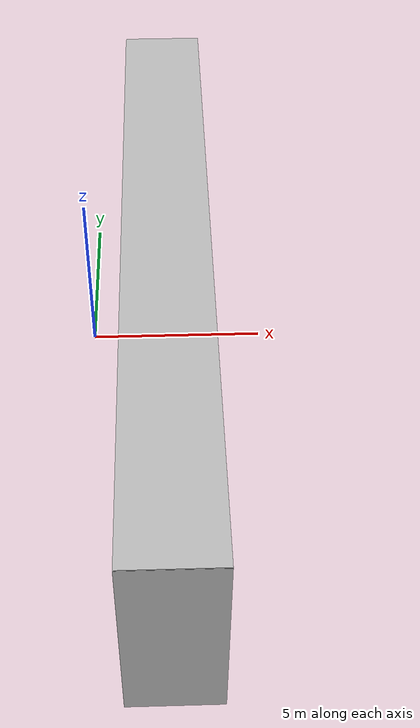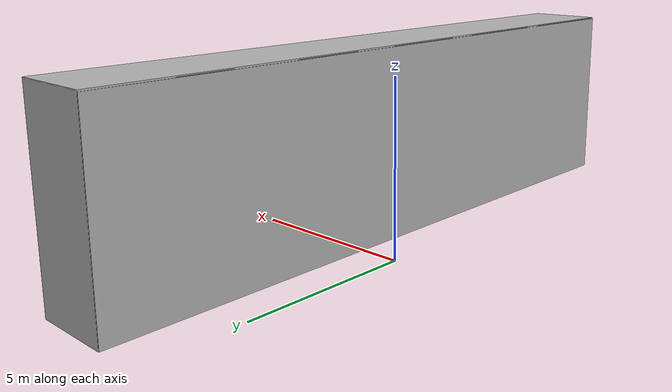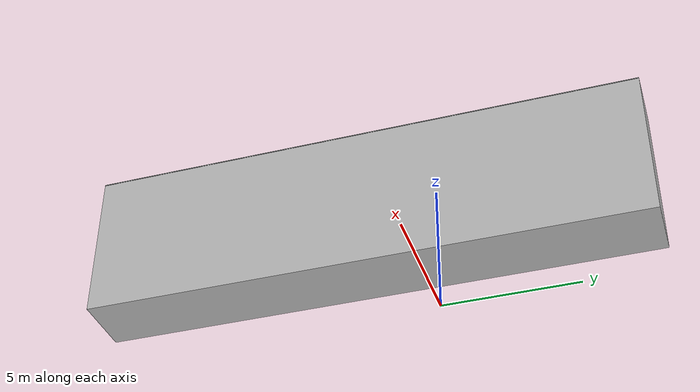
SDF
<?xml version="1.0"?>
<sdf version="1.5">
  <model name= "five_comp_bwt" >
    <static>true</static>
    <link name="link">
      <collision name="collision">
        <geometry>
          <mesh>
            <uri>model://five_comp_bwt/meshes/five_comp_bwt.stl</uri>
          </mesh>
        </geometry>
      </collision>
      <visual name="visual">
        <geometry>
          <mesh>
            <uri>model://five_comp_bwt/meshes/five_comp_bwt.stl</uri>
          </mesh>
        </geometry>
      </visual>
    </link>
  </model>
</sdf>
